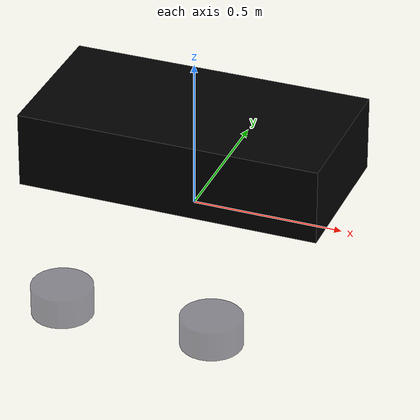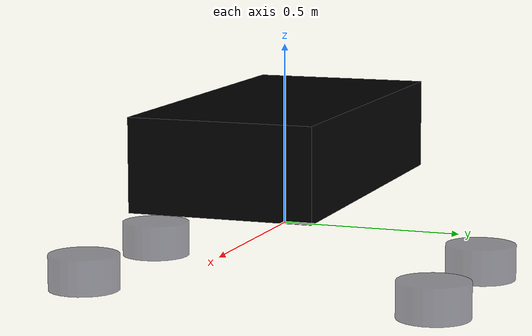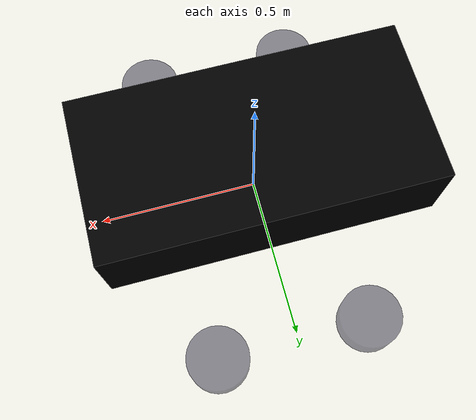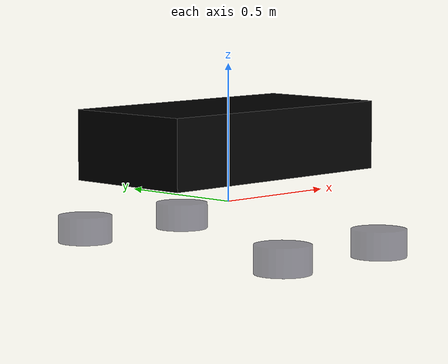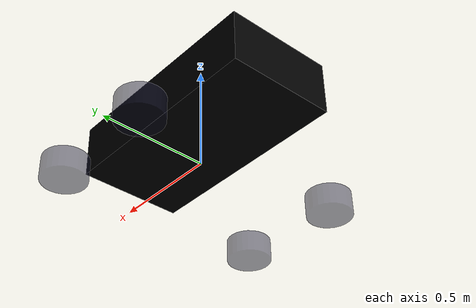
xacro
<?xml version="1.0" encoding="utf-8"?>

<robot name="slam_bot" xmlns:xacro="http://www.ros.org/wiki/xacro">

<xacro:property name="bot_length"       value="1.0"/>
<xacro:property name="bot_width"        value="0.5"/>
<xacro:property name="bot_height"       value="0.25"/>
<xacro:property name="lidar_mount_side" value="0.125"/>
<xacro:property name="lidar"            value="0.1"/>
<xacro:property name="camera"           value="0.1"/>
<xacro:property name="wheel_radius"     value="0.1"/>
<xacro:property name="wheel_width"      value="0.034"/>
<xacro:property name="mass_wheel"		value="0.04" />
<xacro:property name="mass_bot"			value="0.2" />

<!-- Need to add controller  -->

<link name="slam_body_base">
<inertial>
	<origin xyz ="0 0 ${wheel_radius+bot_height/2}" rpy="0 0 0"/>
	<mass value = "${mass_bot}" />
	<inertia
		ixx="${mass_bot*(bot_width*bot_width+bot_height*bot_height)/12}"  ixy = "0" ixz="0"
		iyy="${mass_bot*(bot_length*bot_length+bot_height*bot_height)/12}" iyz ="0"
		izz="${mass_bot*(bot_length*bot_length+bot_width*bot_width)/12}" />
</inertial>

<visual>
	<origin xyz ="0 0 ${wheel_radius+bot_height/2}" rpy="0 0 0"/>
	<geometry>
		<box size="${bot_length} ${bot_width} ${bot_height}" />
	</geometry>
	<material name="">
		<color rgba="0 0 0 0"/>
	</material>
</visual>

<collision>
	<origin xyz="0 0 ${wheel_radius+bot_height/2}" rpy="0 0 0"/>
	<geometry>
		<box size="${bot_length} ${bot_width} ${bot_height}" />
	</geometry>
</collision>
</link>

<joint name="Wheel_Front_Right_mount" type="continuous">
	<origin xyz="${bot_width/2} ${bot_length/2} ${-bot_height/2}" rpy="0 0 0"/>
	<parent link="slam_body_base" />
	<child link="Wheel_Front_Right" />
	<axis xyz="0 1 0" rpy="0 0 0"/>
</joint>

<link name="Wheel_Front_Right">

<inertial>
	<origin xyz="0 0 0" rpy="0 0 0"/>
	<mass value="${mass_wheel}"/>
	<inertia
		ixx = "${mass_wheel*wheel_radius*wheel_radius/4}"  ixy ="0" ixz="0"
		iyy = "${mass_wheel*wheel_radius*wheel_radius/4}" iyz="0"
		izz = "${mass_wheel*wheel_radius*wheel_radius/2}" />
</inertial>

<visual>
	<origin xyz="0 0 0" rpy="0 0 0"/>
	<geometry>
		<cylinder radius="${wheel_radius}" length="${wheel_radius}" />
	</geometry>
	<material name="">
		<color rgba="0.1 0.1 0.2 0.5"/>
	</material>
</visual>

<collision>
	<origin xyz="0 0 0" rpy="0 0 0"/>
	<geometry>
		<cylinder radius="${wheel_radius}" length="${wheel_radius}" />
	</geometry>
</collision>

</link>

<joint name="Wheel_Front_Left_mount" type="continuous">
	<origin xyz="${-bot_width/2} ${bot_length/2} ${-bot_height/2}" rpy="0 0 0"/>
	<parent link="slam_body_base" />
	<child link="Wheel_Front_Left" />
	<axis xyz="0 -1 0" rpy="0 0 0"/>
</joint>

<link name="Wheel_Front_Left">

<inertial>
	<origin xyz="0 0 0" rpy="0 0 0"/>
	<mass value="${mass_wheel}"/>
	<inertia
		ixx = "${mass_wheel*wheel_radius*wheel_radius/4}"  ixy ="0" ixz="0"
		iyy = "${mass_wheel*wheel_radius*wheel_radius/4}" iyz="0"
		izz = "${mass_wheel*wheel_radius*wheel_radius/2}" />
</inertial>

<visual>
	<origin xyz="0 0 0" rpy="0 0 0"/>
	<geometry>
		<cylinder radius="${wheel_radius}" length="${wheel_radius}" />
	</geometry>
	<material name="">
		<color rgba="0.1 0.1 0.2 0.5"/>
	</material>
</visual>

<collision>
	<origin xyz="0 0 0" rpy="0 0 0"/>
	<geometry >
		<cylinder radius="${wheel_radius}" length="${wheel_radius}" />
	</geometry>
</collision>

</link>

<joint name="Wheel_Rear_Right_mount" type="continuous">
	<origin xyz="${bot_width/2} ${-bot_length/2} ${-bot_height/2}" rpy="0 0 0"/>
	<parent link="slam_body_base" />
	<child link="Wheel_Rear_Right" />
	<axis xyz="0 1 0" rpy="0 0 0"/>
</joint>

<link name="Wheel_Rear_Right">

<inertial>
	<origin xyz="0 0 0" rpy="0 0 0"/>
	<mass value="${mass_wheel}"/>
	<inertia
		ixx = "${mass_wheel*wheel_radius*wheel_radius/4}"  ixy ="0" ixz="0"
		iyy = "${mass_wheel*wheel_radius*wheel_radius/4}" iyz="0"
		izz = "${mass_wheel*wheel_radius*wheel_radius/2}" />
</inertial>

<visual>
	<origin xyz="0 0 0" rpy="0 0 0"/>
	<geometry>
		<cylinder radius="${wheel_radius}" length="${wheel_radius}" />
	</geometry>
	<material name="">
		<color rgba="0.1 0.1 0.2 0.5"/>
	</material>
</visual>

<collision>
	<origin xyz="0 0 0" rpy="0 0 0"/>
	<geometry>
		<cylinder radius="${wheel_radius}" length="${wheel_radius}" />
	</geometry>
</collision>

</link>

<joint name="Wheel_Rear_Left_mount" type="continuous">
	<origin xyz="${-bot_width/2} ${-bot_length/2} ${-bot_height/2}" rpy="0 0 0"/>
	<parent link="slam_body_base" />
	<child link="Wheel_Rear_Left" />
	<axis xyz="0 -1 0" rpy="0 0 0"/>
</joint>

<link name="Wheel_Rear_Left">

<inertial>
	<origin xyz="0 0 0" rpy="0 0 0"/>
	<mass value="${mass_wheel}"/>
	<inertia
		ixx = "${mass_wheel*wheel_radius*wheel_radius/4}"  ixy ="0" ixz="0"
		iyy = "${mass_wheel*wheel_radius*wheel_radius/4}" iyz="0"
		izz = "${mass_wheel*wheel_radius*wheel_radius/2}" />
</inertial>

<visual>
	<origin xyz="0 0 0" rpy="0 0 0"/>
	<geometry>
		<cylinder radius="${wheel_radius}" length="${wheel_radius}" />
	</geometry>
	<material name="">
		<color rgba="0.1 0.1 0.2 0.5"/>
	</material>
</visual>

<collision>
	<origin xyz="0 0 0" rpy="0 0 0"/>
	<geometry>
		<cylinder radius="${wheel_radius}" length="${wheel_radius}" />
	</geometry>
</collision>

</link>

</robot>
